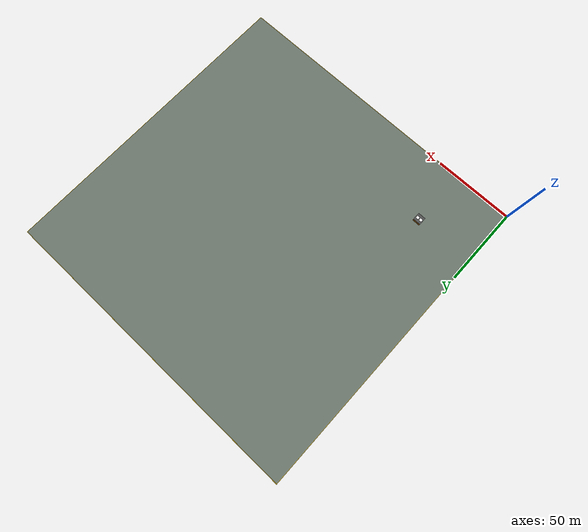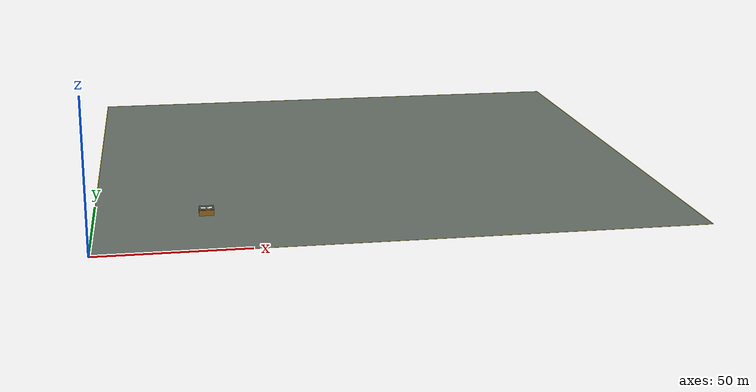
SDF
<?xml version="1.0" encoding="UTF-8"?>
<sdf version="1.9">
  <world name="mpc_landing_200m">
    <magnetic_field>6.0e-6 2.3e-5 -4.2e-5</magnetic_field>
    <atmosphere type="adiabatic"/>

    <plugin filename="gz-sim-physics-system" name="gz::sim::systems::Physics"/>
    <plugin filename="gz-sim-user-commands-system" name="gz::sim::systems::UserCommands"/>
    <plugin filename="gz-sim-scene-broadcaster-system" name="gz::sim::systems::SceneBroadcaster"/>
    <plugin filename="gz-sim-contact-system" name="gz::sim::systems::Contact"/>
    <plugin filename="gz-sim-sensors-system" name="gz::sim::systems::Sensors">
      <render_engine>ogre2</render_engine>
    </plugin>
    <plugin filename="gz-sim-imu-system" name="gz::sim::systems::Imu"/>
    <plugin filename="gz-sim-air-pressure-system" name="gz::sim::systems::AirPressure"/>
    <plugin filename="gz-sim-magnetometer-system" name="gz::sim::systems::Magnetometer"/>
    <plugin filename="gz-sim-navsat-system" name="gz::sim::systems::NavSat"/>

    <physics name="2ms" type="ignored">
      <max_step_size>0.002</max_step_size>
      <real_time_factor>1.0</real_time_factor>
      <real_time_update_rate>500</real_time_update_rate>
    </physics>
    <gravity>0 0 -9.8066</gravity>

    <scene>
      <ambient>0.58 0.60 0.62 1</ambient>
      <background>0.62 0.75 0.88 1</background>
      <grid>true</grid>
      <origin_visual>true</origin_visual>
      <sky/>
    </scene>

    <light type="directional" name="sun">
      <pose>100 100 300 0 0 0</pose>
      <diffuse>0.90 0.88 0.82 1</diffuse>
      <specular>0.10 0.10 0.10 1</specular>
      <direction>-0.35 0.25 -0.90</direction>
      <cast_shadows>true</cast_shadows>
    </light>

    <gui fullscreen="0">
      <plugin filename="MinimalScene" name="3D View">
        <gz-gui>
          <title>Precision Landing 200 m Experiment</title>
          <property type="bool" key="showTitleBar">false</property>
          <property type="string" key="state">docked</property>
        </gz-gui>
        <engine>ogre2</engine>
        <scene>scene</scene>
        <ambient_light>0.58 0.60 0.62</ambient_light>
        <background_color>0.62 0.75 0.88</background_color>
        <camera_pose>20 20 18 0 0.75 0.785398</camera_pose>
        <camera_clip><near>0.2</near><far>1000</far></camera_clip>
      </plugin>
      <plugin filename="GzSceneManager" name="Scene Manager"/>
      <plugin filename="InteractiveViewControl" name="Interactive view control"/>
      <plugin filename="CameraTracking" name="Camera Tracking"/>
      <plugin filename="EntityTree" name="Entity tree"/>
      <plugin filename="WorldControl" name="World control">
        <play_pause>true</play_pause>
        <step>true</step>
        <start_paused>true</start_paused>
      </plugin>
      <plugin filename="WorldStats" name="World stats">
        <sim_time>true</sim_time>
        <real_time_factor>true</real_time_factor>
      </plugin>
    </gui>

    <spherical_coordinates>
      <surface_model>EARTH_WGS84</surface_model>
      <latitude_deg>37.32977431415926</latitude_deg>
      <longitude_deg>-121.99860517699835</longitude_deg>
      <elevation>50.6</elevation>
      <heading_deg>0</heading_deg>
    </spherical_coordinates>

    <!-- Exact 200 x 200 m ENU area: x=[0,200], y=[0,200], top z=0. -->
    <model name="experiment_ground">
      <static>true</static>
      <pose>100 100 0 0 0 0</pose>
      <link name="ground">
        <collision name="collision">
          <pose>0 0 -0.05 0 0 0</pose>
          <geometry><box><size>200 200 0.1</size></box></geometry>
        </collision>
        <visual name="visual">
          <pose>0 0 -0.05 0 0 0</pose>
          <cast_shadows>false</cast_shadows>
          <geometry><box><size>200 200 0.1</size></box></geometry>
          <material>
            <ambient>0.30 0.34 0.30 1</ambient>
            <diffuse>0.42 0.46 0.42 1</diffuse>
            <specular>0.02 0.02 0.02 1</specular>
          </material>
        </visual>
      </link>
    </model>

    <model name="map_boundary">
      <static>true</static>
      <link name="boundary">
        <visual name="south"><pose>100 0 0.006 0 0 0</pose><geometry><box><size>200 0.20 0.012</size></box></geometry><material><ambient>1 0.82 0.05 1</ambient><diffuse>1 0.82 0.05 1</diffuse></material></visual>
        <visual name="north"><pose>100 200 0.006 0 0 0</pose><geometry><box><size>200 0.20 0.012</size></box></geometry><material><ambient>1 0.82 0.05 1</ambient><diffuse>1 0.82 0.05 1</diffuse></material></visual>
        <visual name="west"><pose>0 100 0.006 0 0 0</pose><geometry><box><size>0.20 200 0.012</size></box></geometry><material><ambient>1 0.82 0.05 1</ambient><diffuse>1 0.82 0.05 1</diffuse></material></visual>
        <visual name="east"><pose>200 100 0.006 0 0 0</pose><geometry><box><size>0.20 200 0.012</size></box></geometry><material><ambient>1 0.82 0.05 1</ambient><diffuse>1 0.82 0.05 1</diffuse></material></visual>
      </link>
    </model>

    <frame name="drone_spawn"><pose>30 30 0 0 0 0</pose></frame>
    <frame name="trailer_spawn"><pose>37.071067811865476 37.071067811865476 0 0 0 0</pose></frame>

    <include>
      <uri>model://moving_platform_aruco_velocity</uri>
      <name>trailer</name>
      <pose>37.071067811865476 37.071067811865476 0 0 0 0</pose>
    </include>

    <!-- PX4 SITL dynamically creates x500_city_rgbd_lidar at (30,30,0). -->
  </world>
</sdf>

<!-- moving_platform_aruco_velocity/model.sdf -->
<sdf version="1.9">
  <model name="moving_platform_aruco_velocity">
    <static>false</static>
    <self_collide>false</self_collide>
    <allow_auto_disable>false</allow_auto_disable>
    <link name="platform_link">
      <gravity>false</gravity>
      <visual name="body_visual">
        <pose>0 0 -1.0 0 0 0</pose>
        <geometry><box><size>5 5 1.9</size></box></geometry>
        <material>
          <ambient>0.55 0.32 0.05 1</ambient>
          <diffuse>0.6 0.38 0.08 1</diffuse>
          <specular>0.2 0.2 0.2 1</specular>
        </material>
      </visual>
      <collision name="body_collision">
        <pose>0 0 -1.0 0 0 0</pose>
        <geometry><box><size>5 5 1.9</size></box></geometry>
      </collision>
      <visual name="platform_visual">
        <geometry><box><size>5 5 0.1</size></box></geometry>
        <material>
          <ambient>0.3 0.3 0.3 1</ambient>
          <diffuse>0.3 0.3 0.3 1</diffuse>
          <specular>0.1 0.1 0.1 1</specular>
        </material>
      </visual>
      <collision name="platform_collision">
        <geometry><box><size>5 5 0.1</size></box></geometry>
      </collision>
      <visual name="aruco_visual">
        <pose>-1.1 0 0.051 0 0 0</pose>
        <geometry><plane><normal>0 0 1</normal><size>1.69 1.69</size></plane></geometry>
        <material>
          <ambient>1 1 1 1</ambient>
          <diffuse>1 1 1 1</diffuse>
          <specular>0 0 0 1</specular>
          <pbr><metal>
            <albedo_map>model://aruco_marker_0/materials/textures/aruco_0.png</albedo_map>
            <metalness>0.0</metalness>
            <roughness>1.0</roughness>
          </metal></pbr>
        </material>
      </visual>
      <visual name="aruco_visual_2">
        <pose>1.1 0 0.051 0 0 0</pose>
        <geometry><plane><normal>0 0 1</normal><size>1.69 1.69</size></plane></geometry>
        <material>
          <ambient>1 1 1 1</ambient>
          <diffuse>1 1 1 1</diffuse>
          <specular>0 0 0 1</specular>
          <pbr><metal>
            <albedo_map>model://aruco_marker_2/materials/textures/aruco_2.png</albedo_map>
            <metalness>0.0</metalness>
            <roughness>1.0</roughness>
          </metal></pbr>
        </material>
      </visual>
      <visual name="aruco_small_visual">
        <pose>0 0 0.0511 0 0 0</pose>
        <geometry><plane><normal>0 0 1</normal><size>0.39 0.39</size></plane></geometry>
        <material>
          <ambient>1 1 1 1</ambient>
          <diffuse>1 1 1 1</diffuse>
          <specular>0 0 0 1</specular>
          <pbr><metal>
            <albedo_map>model://aruco_marker_1/materials/textures/aruco_1.png</albedo_map>
            <metalness>0.0</metalness>
            <roughness>1.0</roughness>
          </metal></pbr>
        </material>
      </visual>
      <pose>0 0 2 0 0 0</pose>
      <inertial>
        <mass>10000</mass>
        <inertia>
          <ixx>10000</ixx><iyy>10000</iyy><izz>10000</izz>
        </inertia>
      </inertial>
    </link>
    <plugin filename="gz-sim-velocity-control-system"
            name="gz::sim::systems::VelocityControl">
      <topic>/model/trailer/cmd_vel</topic>
      <link_name>platform_link</link_name>
    </plugin>
    <plugin filename="gz-sim-odometry-publisher-system"
            name="gz::sim::systems::OdometryPublisher">
      <dimensions>3</dimensions>
      <odom_frame>world</odom_frame>
      <robot_base_frame>trailer/base_link</robot_base_frame>
      <odom_publish_frequency>50</odom_publish_frequency>
      <odom_topic>/model/trailer/odometry</odom_topic>
    </plugin>
  </model>
</sdf>
